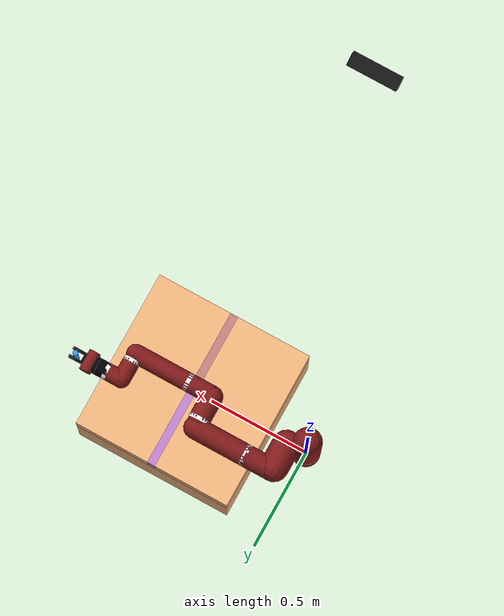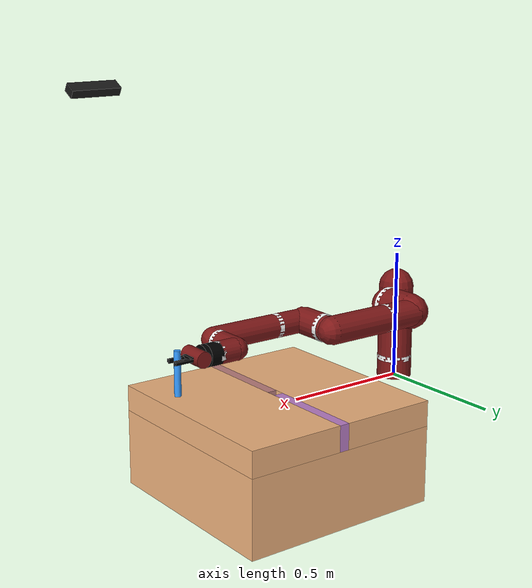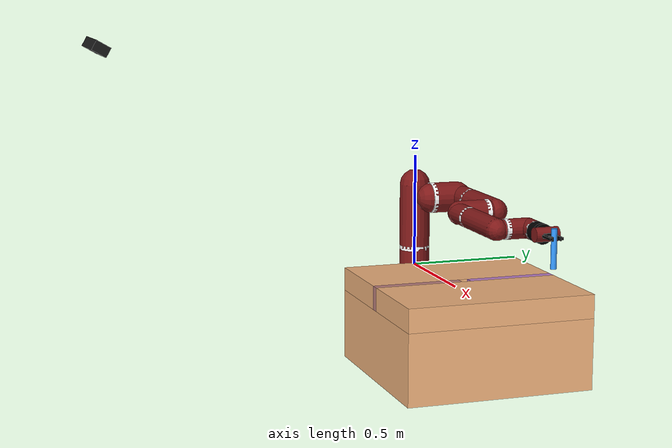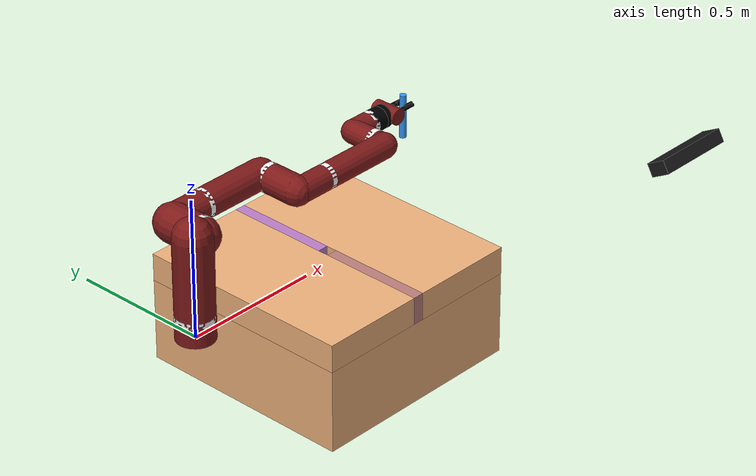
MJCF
<mujoco model="simrobot">
    <compiler angle="radian" coordinate="local" inertiafromgeom="auto"/>
    <option gravity="0 0 -9.81" integrator="RK4" iterations="30" timestep="0.001"/>
    <default>
        <joint armature="1" damping="1" frictionloss="0" limited="true" stiffness="0"/>
        <geom conaffinity="1" condim="3" contype="1" friction=".5 .1 .1" margin="0.002"/>
        <motor ctrllimited="true"/>
        <position ctrllimited="true"/>
    </default>
    <asset>
        <texture builtin="gradient" height="100" rgb1=".4 .6 .8" rgb2="0.9 0.9 0.9" type="skybox" width="100"/>
        <texture builtin="checker" height="100" name="texplane" rgb1=".2 .3 .4" rgb2=".1 0.15 0.2" type="2d"
                 width="100"/>
        <texture builtin="flat" height="32" name="texgeom" rgb1="1 1 1" type="cube" width="32"/>
        <texture builtin="flat" height="32" name="gripper_finger_tex" rgb1="0 0 0" type="cube" width="32"/>
        <texture builtin="flat" height="32" name="gripper_tex" rgb1="0.5 0.1 0.1" type="cube" width="32"/>
        <texture builtin="flat" height="32" name="arm_tex" rgb1="0.5 0.1 0.1" type="cube" width="32"/>
        <texture builtin="flat" height="32" name="l6_tex" rgb1="0 0 0" type="cube" width="32"/>
        <texture builtin="flat" height="32" name="head_tex" rgb1="1 1 1" type="cube" width="32"/>
        <texture builtin="flat" height="32" name="torso_tex" rgb1="1 1 1" type="cube" width="32"/>
        <texture builtin="flat" height="32" name="base_tex" rgb1="0.5 0.1 0.1" type="cube" width="32"/>
        <texture builtin="flat" height="32" name="table_tex" rgb1="0.5 0.86 0.60" type="cube" width="32"/>
        <texture builtin="flat" height="32" name="peg_tex" rgb1="0.2 0.6 0.99" type="2d" width="32"/>
        <material name="gripper_finger_mat" shininess="0.03" specular="0.75" texture="gripper_finger_tex"/>
        <material name="gripper_mat" shininess="0.03" specular="0.75" texture="gripper_tex"/>
        <material name="arm_mat" shininess="0.03" specular="0.75" texture="arm_tex"/>
        <material name="l6_mat" shininess="0.03" specular="0.75" texture="l6_tex"/>
        <material name="head_mat" shininess="0.03" specular="0.75" texture="head_tex"/>
        <material name="torso_mat" shininess="0.03" specular="0.75" texture="torso_tex"/>
        <material name="base_mat" shininess="0.03" specular="0.75" texture="base_tex"/>
        <material name="table_mat" shininess="0.01" specular="0.75" texture="table_tex"/>
        <material name="peg_mat" shininess="0.01" specular="0.75" texture="peg_tex"/>
    </asset>
    <worldbody>
        <light cutoff="45" diffuse=".8 .8 .8" dir="0 0.25 -1" directional="false" name="light" pos="0 -2.0 8.0"
               specular="0.3 0.3 0.3"/>
        <body name="kinect" pos="0.5 -1.5 1.05"
              quat="0.68301270255993607 -0.18301270152365204 0.18301270185214089 0.68301270133399883">
            <body euler="1.5707 -1.5707 0" name="head_camera" pos="0.032 -0.097 0">
                <camera euler="0 0 0" fovy="54" name="head_camera" pos="0 0 0"/>
            </body>
            <site name="kinect" pos="0 0 0" rgba="0.1 0.1 0.1 1" size="0.032 0.125 0.021" type="box"/>
        </body>
        <body name="base_link" pos="0 0 0">
            <inertial diaginertia="0.00740351 0.00681776 0.00672942" mass="2.0687" pos="-0.0006241 -2.8025e-05 0.065404"
                      quat="-0.209285 0.674441 0.227335 0.670558"/>
            <geom fromto="0 0 0 0 0 0.08" material="base_mat" name="base_link" rgba="0.5 0.1 0.1 1" size="0.068"
                  type="cylinder"/>
        </body>
        <body name="l0" pos="0 0 0.08">
            <inertial diaginertia="0.0651588 0.0510944 0.0186218" mass="5.3213" pos="0.024366 0.010969 0.14363"
                      quat="0.894823 0.00899958 -0.170275 0.412573"/>
            <joint axis="0 0 1" damping="15.0" frictionloss="5.0" limited="true" name="j0" pos="0 0 0"
                   range="-3.0503 3.0503"/>
            <site name="j0" pos="0 0 0" rgba="1 1 1 1" size="0.068 0.01 0.00" type="cylinder"/>
            <geom fromto="0 0 0 0 0 0.29" material="arm_mat" name="gl0" rgba="0.5 0.1 0.1 1" size="0.068"
                  type="capsule"/>
            <body name="l1" pos="0.081 0.05 0.237" quat="0.5 -0.5 0.5 0.5">
                <inertial diaginertia="0.0224339 0.0221624 0.0097097" mass="4.505" pos="-0.0030849 -0.026811 0.092521"
                          quat="0.424888 0.891987 0.132364 -0.0794296"/>
                <joint axis="0 0 1" damping="5.0" frictionloss="2.0" limited="true" name="j1" pos="0 0 0"
                       range="-3.8095 2.2736"/>
                <site name="j1" pos="0 0 0" rgba="1 1 1 1" size="0.068 0.01 0.00" type="cylinder"/>
                <geom fromto="0 0 0 0 0 0.119" material="arm_mat" name="gl1_1" rgba="0.5 0.1 0.1 1" size="0.068"
                      type="capsule"/>
                <geom fromto="0 0 0.1336 0 -0.140 0.1336" material="arm_mat" name="gl1_2" rgba="0.5 0.1 0.1 1"
                      size="0.053" type="cylinder"/>
                <body name="l2" pos="0 -0.140 0.1336" quat="0.707107 0.707107 0 0">
                    <inertial diaginertia="0.0257928 0.025506 0.00292515" mass="1.745"
                              pos="-0.00016044 -0.014967 0.13582" quat="0.707831 -0.0524761 0.0516007 0.702537"/>
                    <joint axis="0 0 1" damping="5.0" frictionloss="2.0" limited="true" name="j2" pos="0 0 0"
                           range="-3.0426 3.0426"/>
                    <site name="j2" pos="0 0 0" rgba="1 1 1 1" size="0.053 0.01 0.00" type="cylinder"/>
                    <geom fromto="0 0 0 0 0 0.263" material="arm_mat" name="gl2" rgba="0.5 0.1 0.1 1" size="0.053"
                          type="capsule"/>
                    <body name="l3" pos="0 -0.042 0.263" quat="0.707107 -0.707107 0 0">
                        <inertial diaginertia="0.0102404 0.0096997 0.00369622" mass="2.5097"
                                  pos="-0.0048135 -0.0281 -0.084154" quat="0.902999 0.385391 -0.0880901 0.168247"/>
                        <joint axis="0 0 1" damping="15.0" frictionloss="5.0" limited="true" name="j3" pos="0 0 0"
                               range="-3.0439 3.0439"/>
                        <site name="j3" pos="0 0 0" rgba="1 1 1 1" size="0.052 0.01 0.00" type="cylinder"/>
                        <geom fromto="0 0 0 0 0 -0.1195" material="arm_mat" name="gl3_1" rgba="0.5 0.1 0.1 1"
                              size="0.052" type="capsule"/>
                        <geom fromto="0 0 -0.1265 0 -0.1265 -0.1265" material="arm_mat" name="gl3_2"
                              rgba="0.5 0.1 0.1 1" size="0.045" type="capsule"/>
                        <body name="l4" pos="0 -0.1265 -0.1265" quat="0.707107 0.707107 0 0">
                            <inertial diaginertia="0.0136549 0.0135493 0.00127353" mass="1.1136"
                                      pos="-0.0018844 0.0069001 0.1341" quat="0.803612 0.031257 -0.0298334 0.593582"/>
                            <joint axis="0 0 1" damping="6.0" frictionloss="1.0" limited="true" name="j4" pos="0 0 0"
                                   range="-2.9761 2.9761"/>
                            <site name="j4" pos="0 0 0" rgba="1 1 1 1" size="0.045 0.01 0.00" type="cylinder"/>
                            <geom fromto="0 0 0 0 0 0.275" material="arm_mat" name="gl4" rgba="0.5 0.1 0.1 1"
                                  size="0.045" type="capsule"/>
                            <body name="l5" pos="0 0.040 0.275" quat="0.707107 -0.707107 0 0">
                                <inertial diaginertia="0.00474131 0.00422857 0.00190672" mass="1.5625"
                                          pos="0.0061133 -0.023697 0.076416"
                                          quat="0.404076 0.9135 0.0473125 0.00158335"/>
                                <joint axis="0 0 1" damping="5.5" frictionloss="1.2" limited="true" name="j5"
                                       pos="0 0 0" range="-2.9761 2.9761"/>
                                <site name="j5" pos="0 0 0" rgba="1 1 1 1" size="0.042 0.01 0.00" type="cylinder"/>
                                <geom fromto="0 0 0 0 0 0.0958" material="arm_mat" name="gl5_1" rgba="0.5 0.1 0.1 1"
                                      size="0.042" type="capsule"/>
                                <geom fromto="0 0 0.0958 0 -0.076 0.0958" material="arm_mat" name="gl5_2"
                                      rgba="0.5 0.1 0.1 1" size="0.041" type="cylinder"/>
                                <body name="l6" pos="0 -0.076 0.0958"
                                      quat="-2.59734e-06 2.59735e-06 0.707105 -0.707108">
                                    <inertial diaginertia="0.000360258 0.000311068 0.000214974" mass="0.3292"
                                              pos="-8.0726e-06 0.0085838 -0.0049566"
                                              quat="0.479044 0.515636 -0.513069 0.491322"/>
                                    <joint axis="0 0 1" damping="1.0" frictionloss="0.5" limited="true" name="j6"
                                           pos="0 0 0" range="-4.7124 4.7124"/>
                                    <site name="j6" pos="0 0 0" rgba="1 1 1 1" size="0.041 0.01 0.00" type="cylinder"/>
                                    <geom fromto="0 0 0 0 0 0.0488" material="l6_mat" name="gl6" rgba="0 0 0 1"
                                          size="0.041" type="cylinder"/>
                                    <body name="connector_plate_base" pos="0 0 0.0488">
                                        <inertial diaginertia="0.000123974 6.98704e-05 6.81858e-05" mass="0.1609"
                                                  pos="-0.00032768 -2.5612e-05 0.0062193"
                                                  quat="0.483054 0.500901 -0.498692 0.516781"/>
                                        <geom fromto="0 0 0 0 0 0.0194" material="l6_mat" name="gconnector_base"
                                              rgba="0 0 0 1" size="0.041" type="cylinder"/>
                                        <body name="connector_plate_mount" pos="0 0 0.0151">
                                            <inertial diaginertia="0 0 0" mass="0" pos="0 0 0.0151"/>
                                            <body name="electric_gripper_base" pos="0 0 0">
                                                <inertial diaginertia="3e-08 2e-08 2e-08" mass="0.3" pos="0 0 0"
                                                          quat="-0.5 0.5 0.5 0.5"/>
                                                <geom material="gripper_mat" name="ggripper_base" pos="0.004 0 0.025"
                                                      quat="0 0 0.707107 0.707107" rgba="0.5 0.1 0.1 1"
                                                      size="0.029 0.05" type="cylinder"/>
                                                <site name="grip_base" pos="0.003 0 0.05552" rgba="1 1 1 1"
                                                      size="0.005 0.005 0.005"/>
                                                <body name="gripper_l_finger" pos="0.003 0.0045 0.04552">
                                                    <inertial diaginertia="0.01 0.01 0.01" mass="0.02" pos="0 0 0"
                                                              quat="0 0 0 -1"/>
                                                    <joint axis="0 1 0" damping="2" limited="true"
                                                           name="gripper_l_finger_joint" pos="0 0 0" range="0 0.020833"
                                                           type="slide"/>
                                                    <geom material="gripper_finger_mat" name="ggripper_l_finger1"
                                                          pos="0 0.01725 0.04" quat="0 0 0 -1" rgba="0 0 0 1"
                                                          size="0.005 0.00675 0.0375" type="box"/>
                                                    <geom material="gripper_finger_mat" name="ggripper_l_finger2"
                                                          pos="-0.005 -0.003 0.0083" quat="0 0 0 -1" rgba="0 0 0 1"
                                                          size="0.005 0.025 0.0085" type="box"/>
                                                    <body name="gripper_l_finger_tip" pos="0 0.01725 0.075">
                                                        <inertial diaginertia="0.01 0.01 0.01" mass="0.01" pos="0 0 0"
                                                                  quat="0 0 0 1"/>
                                                        <geom material="gripper_finger_mat" name="ggripper_l_finger_tip"
                                                              pos="0 -0.0045 -0.015" quat="0 0 0 1" rgba="0 0 0 1"
                                                              size="0.008 0.00325 0.0185" type="box"/>
                                                    </body>
                                                </body>
                                                <body name="gripper_r_finger" pos="0.003 -0.0045 0.04552">
                                                    <inertial diaginertia="0.01 0.01 0.01" mass="0.02" pos="0 0 0"/>
                                                    <joint axis="0 1 0" damping="2" limited="true"
                                                           name="gripper_r_finger_joint" pos="0 0 0" range="-0.020833 0"
                                                           type="slide"/>
                                                    <geom material="gripper_finger_mat" name="ggripper_r_finger1"
                                                          pos="0 -0.01725 0.04" rgba="0 0 0 1"
                                                          size="0.005 0.00675 0.0375" type="box"/>
                                                    <geom material="gripper_finger_mat" name="ggripper_r_finger2"
                                                          pos="0.005 0.003 0.0083" rgba="0 0 0 1"
                                                          size="0.005 0.025 0.0085" type="box"/>
                                                    <body name="gripper_r_finger_tip" pos="0 -0.01725 0.075">
                                                        <inertial diaginertia="0.01 0.01 0.01" mass="0.01" pos="0 0 0"/>
                                                        <geom material="gripper_finger_mat" name="ggripper_r_finger_tip"
                                                              pos="0 0.0045 -0.015" rgba="0 0 0 1"
                                                              size="0.008 0.00325 0.0185" type="box"/>
                                                    </body>
                                                </body>
                                                <body name="peg" pos="-0.04 0 0.1" quat="0.707107 0 0.707107 0">
                                                    <inertial mass="0.01" pos="0 0 0"/>
                                                    <site name="ref_pt" pos="0.00 0 -0.07" rgba="1 1 1 1"
                                                          size="0.01 0.01 0.01"/>
                                                    <geom material="peg_mat" name="peg" pos="0 0 0" size="0.012 0.08"
                                                          type="cylinder"/>
                                                </body>
                                            </body>
                                        </body>
                                    </body>
                                </body>
                            </body>
                        </body>
                    </body>
                </body>
            </body>
        </body>
        <body name="table" pos="0.6 0 -0.1">
            <geom name="table_base" pos="0 0 -0.1" rgba="0.94 0.70 0.49 1" size="0.4 0.4 0.15" type="box"/>
            <geom material="table_mat" name="table_back_side" pos="-0.21 0 0.1" rgba="0.94 0.70 0.49 1"
                  size="0.19 0.4 0.05" type="box"/>
            <geom material="table_mat" name="table_front_side" pos="0.21 0 0.1" rgba="0.94 0.70 0.49 1"
                  size="0.19 0.4 0.05" type="box"/>
            <geom material="table_mat" name="table_left_side" pos="0. 0.21 0.1" rgba="0.74 0.50 0.79 1"
                  size="0.02 0.19 0.05" type="box"/>
            <geom material="table_mat" name="table_right_side" pos="0. -0.21 0.1" rgba="0.74 0.50 0.49 1"
                  size="0.02 0.19 0.05" type="box"/>
            <site name="target" pos="0 0. 0.1" rgba="1 1 1 1" size="0.02 0.01 0.01"/>
        </body>
    </worldbody>
    <actuator>
        <motor ctrlrange="-80.0 80.0" joint="j0" name="j0"/>
        <motor ctrlrange="-80.0 80.0" joint="j1" name="j1"/>
        <motor ctrlrange="-40.0 40.0" joint="j2" name="j2"/>
        <motor ctrlrange="-40.0 40.0" joint="j3" name="j3"/>
        <motor ctrlrange="-9.0 9.0" joint="j4" name="j4"/>
        <motor ctrlrange="-9.0 9.0" joint="j5" name="j5"/>
        <motor ctrlrange="-9.0 9.0" joint="j6" name="j6"/>
        <position ctrlrange="0 0.020833" joint="gripper_l_finger_joint" kp="10" name="gripper_l_finger_joint"/>
        <position ctrlrange="-0.020833 0" joint="gripper_r_finger_joint" kp="10" name="gripper_r_finger_joint"/>
    </actuator>
</mujoco>
